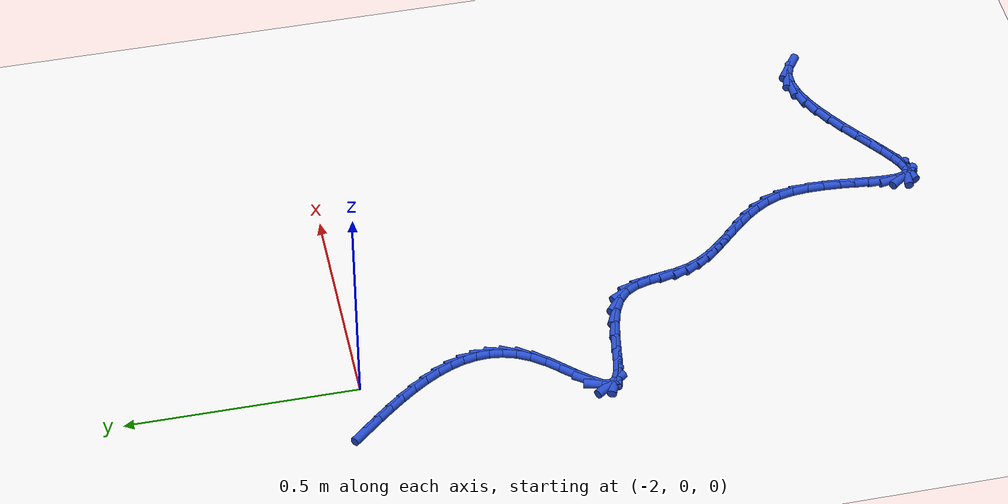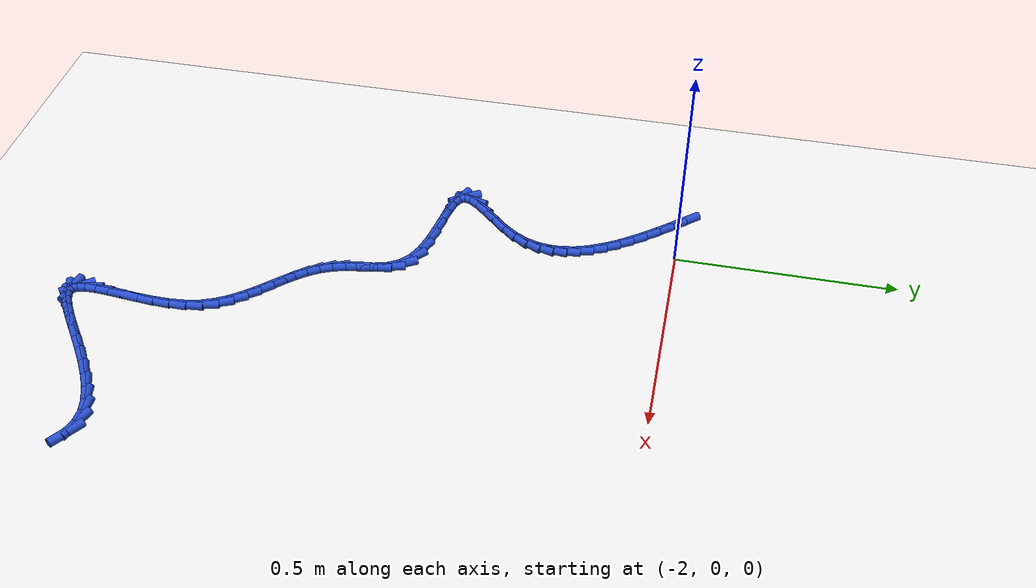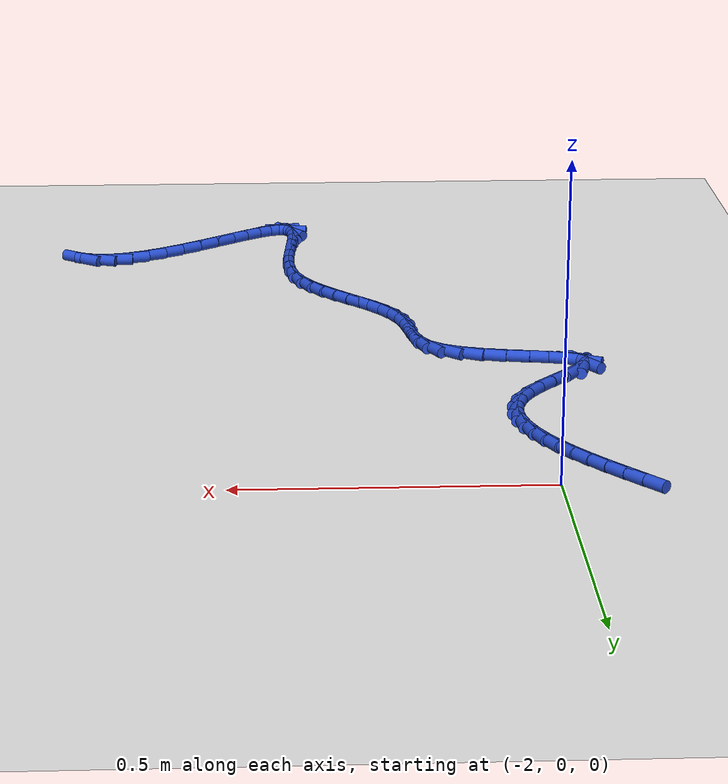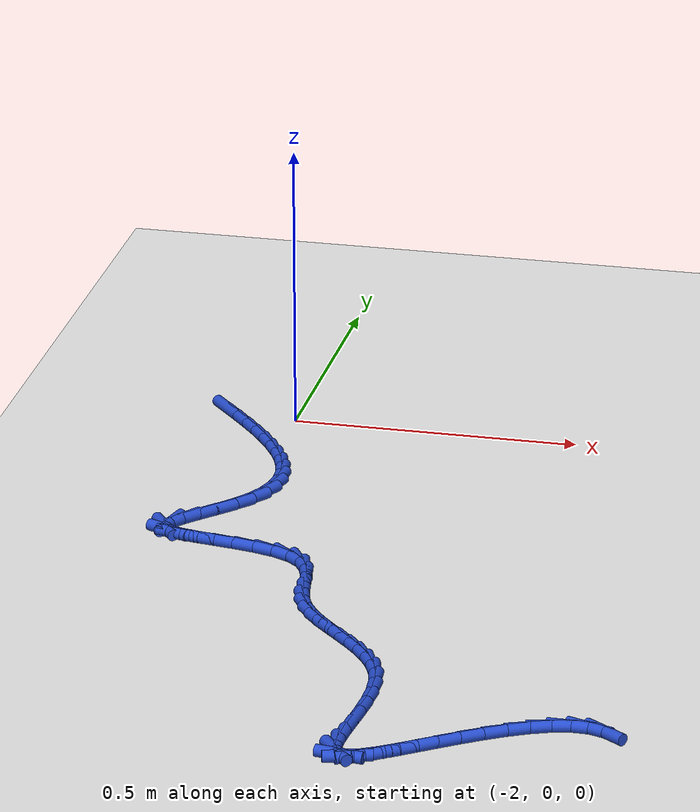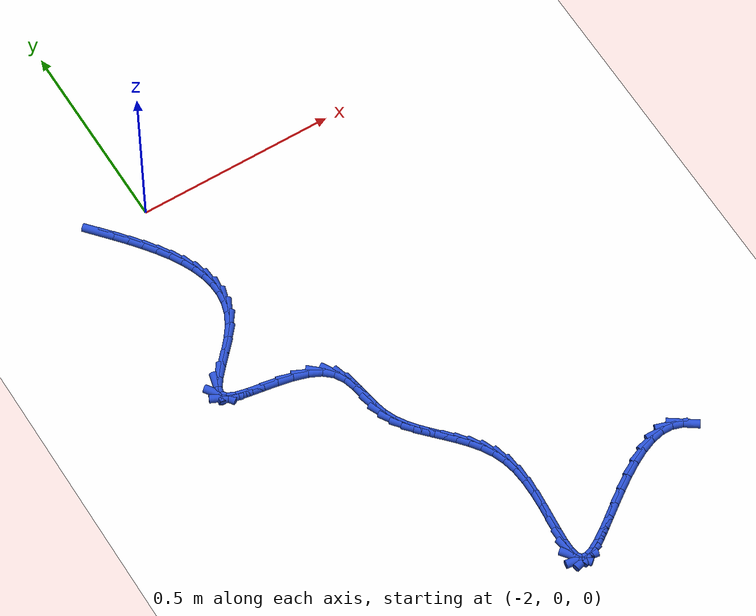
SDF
<sdf version="1.6">
 <world name="default">
  <model name="ground_plane">
   <static>1</static>
   <link name="link">
    <collision name="collision">
     <geometry><plane><normal>0 0 1</normal><size>100 100</size></plane></geometry>
     <surface><friction><ode><mu>100</mu><mu2>50</mu2></ode></friction></surface>
    </collision>
    <visual name="visual">
     <cast_shadows>0</cast_shadows>
     <geometry><plane><normal>0 0 1</normal><size>100 100</size></plane></geometry>
     <material>
      <script><uri>file://media/materials/scripts/gazebo.material</uri><name>Gazebo/WhiteGlow</name></script>
     </material>
    </visual>
   </link>
  </model>
  <model name="line">
   <link name="link_136">
    <pose>-2.1241853174846024 0.008256084330347219 0.01 0 1.57 -0.8607361774679425</pose>
    <collision name="collision">
     <geometry><cylinder><radius>0.01</radius><length>0.08</length></cylinder></geometry>
    </collision>
    <visual name="visual">
     <material>
      <script><name>Gazebo/Blue</name><uri>file://media/materials/scripts/gazebo.material</uri></script>
     </material>
     <geometry><cylinder><radius>0.01</radius><length>0.08</length></cylinder></geometry>
    </visual>
   </link>
   <link name="link_137">
    <pose>-2.099587744469628 -0.020357947055993905 0.01 0 1.57 -0.8769652375034089</pose>
    <collision name="collision">
     <geometry><cylinder><radius>0.01</radius><length>0.08</length></cylinder></geometry>
    </collision>
    <visual name="visual">
     <material>
      <script><name>Gazebo/Blue</name><uri>file://media/materials/scripts/gazebo.material</uri></script>
     </material>
     <geometry><cylinder><radius>0.01</radius><length>0.08</length></cylinder></geometry>
    </visual>
   </link>
   <link name="link_138">
    <pose>-2.075638941632601 -0.04914957978594491 0.01 0 1.57 -0.9031455912797525</pose>
    <collision name="collision">
     <geometry><cylinder><radius>0.01</radius><length>0.08</length></cylinder></geometry>
    </collision>
    <visual name="visual">
     <material>
      <script><name>Gazebo/Blue</name><uri>file://media/materials/scripts/gazebo.material</uri></script>
     </material>
     <geometry><cylinder><radius>0.01</radius><length>0.08</length></cylinder></geometry>
    </visual>
   </link>
   <link name="link_139">
    <pose>-2.0528190358458427 -0.07809278349974609 0.01 0 1.57 -0.9404273449143901</pose>
    <collision name="collision">
     <geometry><cylinder><radius>0.01</radius><length>0.08</length></cylinder></geometry>
    </collision>
    <visual name="visual">
     <material>
      <script><name>Gazebo/Blue</name><uri>file://media/materials/scripts/gazebo.material</uri></script>
     </material>
     <geometry><cylinder><radius>0.01</radius><length>0.08</length></cylinder></geometry>
    </visual>
   </link>
   <link name="link_140">
    <pose>-2.0316081539816726 -0.10716152783764023 0.01 0 1.57 -0.99051786147918</pose>
    <collision name="collision">
     <geometry><cylinder><radius>0.01</radius><length>0.08</length></cylinder></geometry>
    </collision>
    <visual name="visual">
     <material>
      <script><name>Gazebo/Blue</name><uri>file://media/materials/scripts/gazebo.material</uri></script>
     </material>
     <geometry><cylinder><radius>0.01</radius><length>0.08</length></cylinder></geometry>
    </visual>
   </link>
   <link name="link_141">
    <pose>-2.0124864229124104 -0.13632978243987026 0.01 0 1.57 -1.0557098295075826</pose>
    <collision name="collision">
     <geometry><cylinder><radius>0.01</radius><length>0.08</length></cylinder></geometry>
    </collision>
    <visual name="visual">
     <material>
      <script><name>Gazebo/Blue</name><uri>file://media/materials/scripts/gazebo.material</uri></script>
     </material>
     <geometry><cylinder><radius>0.01</radius><length>0.08</length></cylinder></geometry>
    </visual>
   </link>
   <link name="link_142">
    <pose>-1.995933969510377 -0.16557151694667638 0.01 0 1.57 -1.1388118481738803</pose>
    <collision name="collision">
     <geometry><cylinder><radius>0.01</radius><length>0.08</length></cylinder></geometry>
    </collision>
    <visual name="visual">
     <material>
      <script><name>Gazebo/Blue</name><uri>file://media/materials/scripts/gazebo.material</uri></script>
     </material>
     <geometry><cylinder><radius>0.01</radius><length>0.08</length></cylinder></geometry>
    </visual>
   </link>
   <link name="link_143">
    <pose>-1.982430920647892 -0.19486070099830227 0.01 0 1.57 -1.242815863957498</pose>
    <collision name="collision">
     <geometry><cylinder><radius>0.01</radius><length>0.08</length></cylinder></geometry>
    </collision>
    <visual name="visual">
     <material>
      <script><name>Gazebo/Blue</name><uri>file://media/materials/scripts/gazebo.material</uri></script>
     </material>
     <geometry><cylinder><radius>0.01</radius><length>0.08</length></cylinder></geometry>
    </visual>
   </link>
   <link name="link_144">
    <pose>-1.9724574031972768 -0.22417130423498827 0.01 0 1.57 -1.3700347168763618</pose>
    <collision name="collision">
     <geometry><cylinder><radius>0.01</radius><length>0.08</length></cylinder></geometry>
    </collision>
    <visual name="visual">
     <material>
      <script><name>Gazebo/Blue</name><uri>file://media/materials/scripts/gazebo.material</uri></script>
     </material>
     <geometry><cylinder><radius>0.01</radius><length>0.08</length></cylinder></geometry>
    </visual>
   </link>
   <link name="link_145">
    <pose>-1.9664935440308495 -0.253477296296978 0.01 0 1.57 -1.520486761899401</pose>
    <collision name="collision">
     <geometry><cylinder><radius>0.01</radius><length>0.08</length></cylinder></geometry>
    </collision>
    <visual name="visual">
     <material>
      <script><name>Gazebo/Blue</name><uri>file://media/materials/scripts/gazebo.material</uri></script>
     </material>
     <geometry><cylinder><radius>0.01</radius><length>0.08</length></cylinder></geometry>
    </visual>
   </link>
   <link name="link_146">
    <pose>-1.9650194700209314 -0.2827526468245118 0.01 0 1.57 1.451718414804494</pose>
    <collision name="collision">
     <geometry><cylinder><radius>0.01</radius><length>0.08</length></cylinder></geometry>
    </collision>
    <visual name="visual">
     <material>
      <script><name>Gazebo/Blue</name><uri>file://media/materials/scripts/gazebo.material</uri></script>
     </material>
     <geometry><cylinder><radius>0.01</radius><length>0.08</length></cylinder></geometry>
    </visual>
   </link>
   <link name="link_147">
    <pose>-1.9685153080398425 -0.31197132545783324 0.01 0 1.57 1.2728944397398632</pose>
    <collision name="collision">
     <geometry><cylinder><radius>0.01</radius><length>0.08</length></cylinder></geometry>
    </collision>
    <visual name="visual">
     <material>
      <script><name>Gazebo/Blue</name><uri>file://media/materials/scripts/gazebo.material</uri></script>
     </material>
     <geometry><cylinder><radius>0.01</radius><length>0.08</length></cylinder></geometry>
    </visual>
   </link>
   <link name="link_148">
    <pose>-1.9774611849599029 -0.3411073018371828 0.01 0 1.57 1.0972102495821443</pose>
    <collision name="collision">
     <geometry><cylinder><radius>0.01</radius><length>0.08</length></cylinder></geometry>
    </collision>
    <visual name="visual">
     <material>
      <script><name>Gazebo/Blue</name><uri>file://media/materials/scripts/gazebo.material</uri></script>
     </material>
     <geometry><cylinder><radius>0.01</radius><length>0.08</length></cylinder></geometry>
    </visual>
   </link>
   <link name="link_149">
    <pose>-1.9923372276534335 -0.37013454560280407 0.01 0 1.57 0.9420355888676528</pose>
    <collision name="collision">
     <geometry><cylinder><radius>0.01</radius><length>0.08</length></cylinder></geometry>
    </collision>
    <visual name="visual">
     <material>
      <script><name>Gazebo/Blue</name><uri>file://media/materials/scripts/gazebo.material</uri></script>
     </material>
     <geometry><cylinder><radius>0.01</radius><length>0.08</length></cylinder></geometry>
    </visual>
   </link>
   <link name="link_150">
    <pose>-2.0133035834759885 -0.3989654394112665 0.01 0 1.57 0.8488577502482019</pose>
    <collision name="collision">
     <geometry><cylinder><radius>0.01</radius><length>0.08</length></cylinder></geometry>
    </collision>
    <visual name="visual">
     <material>
      <script><name>Gazebo/Blue</name><uri>file://media/materials/scripts/gazebo.material</uri></script>
     </material>
     <geometry><cylinder><radius>0.01</radius><length>0.08</length></cylinder></geometry>
    </visual>
   </link>
   <link name="link_151">
    <pose>-2.038014589541808 -0.4270300685021886 0.01 0 1.57 0.8159530457453256</pose>
    <collision name="collision">
     <geometry><cylinder><radius>0.01</radius><length>0.08</length></cylinder></geometry>
    </collision>
    <visual name="visual">
     <material>
      <script><name>Gazebo/Blue</name><uri>file://media/materials/scripts/gazebo.material</uri></script>
     </material>
     <geometry><cylinder><radius>0.01</radius><length>0.08</length></cylinder></geometry>
    </visual>
   </link>
   <link name="link_152">
    <pose>-2.0629438392142037 -0.45353125842418385 0.01 0 1.57 0.840531120354488</pose>
    <collision name="collision">
     <geometry><cylinder><radius>0.01</radius><length>0.08</length></cylinder></geometry>
    </collision>
    <visual name="visual">
     <material>
      <script><name>Gazebo/Blue</name><uri>file://media/materials/scripts/gazebo.material</uri></script>
     </material>
     <geometry><cylinder><radius>0.01</radius><length>0.08</length></cylinder></geometry>
    </visual>
   </link>
   <link name="link_153">
    <pose>-2.0845580035074542 -0.47767050236996456 0.01 0 1.57 0.9574966306443287</pose>
    <collision name="collision">
     <geometry><cylinder><radius>0.01</radius><length>0.08</length></cylinder></geometry>
    </collision>
    <visual name="visual">
     <material>
      <script><name>Gazebo/Blue</name><uri>file://media/materials/scripts/gazebo.material</uri></script>
     </material>
     <geometry><cylinder><radius>0.01</radius><length>0.08</length></cylinder></geometry>
    </visual>
   </link>
   <link name="link_154">
    <pose>-2.0993237534358387 -0.4986492935322454 0.01 0 1.57 1.3186942539630504</pose>
    <collision name="collision">
     <geometry><cylinder><radius>0.01</radius><length>0.08</length></cylinder></geometry>
    </collision>
    <visual name="visual">
     <material>
      <script><name>Gazebo/Blue</name><uri>file://media/materials/scripts/gazebo.material</uri></script>
     </material>
     <geometry><cylinder><radius>0.01</radius><length>0.08</length></cylinder></geometry>
    </visual>
   </link>
   <link name="link_155">
    <pose>-2.1037077600136347 -0.5156691251037389 0.01 0 1.57 -0.9749293887276882</pose>
    <collision name="collision">
     <geometry><cylinder><radius>0.01</radius><length>0.08</length></cylinder></geometry>
    </collision>
    <visual name="visual">
     <material>
      <script><name>Gazebo/Blue</name><uri>file://media/materials/scripts/gazebo.material</uri></script>
     </material>
     <geometry><cylinder><radius>0.01</radius><length>0.08</length></cylinder></geometry>
    </visual>
   </link>
   <link name="link_156">
    <pose>-2.0951701759245176 -0.5282598281232559 0.01 0 1.57 -0.4289145983045296</pose>
    <collision name="collision">
     <geometry><cylinder><radius>0.01</radius><length>0.08</length></cylinder></geometry>
    </collision>
    <visual name="visual">
     <material>
      <script><name>Gazebo/Blue</name><uri>file://media/materials/scripts/gazebo.material</uri></script>
     </material>
     <geometry><cylinder><radius>0.01</radius><length>0.08</length></cylinder></geometry>
    </visual>
   </link>
   <link name="link_157">
    <pose>-2.075339138659145 -0.5373287196932574 0.01 0 1.57 -0.23550298773128087</pose>
    <collision name="collision">
     <geometry><cylinder><radius>0.01</radius><length>0.08</length></cylinder></geometry>
    </collision>
    <visual name="visual">
     <material>
      <script><name>Gazebo/Blue</name><uri>file://media/materials/scripts/gazebo.material</uri></script>
     </material>
     <geometry><cylinder><radius>0.01</radius><length>0.08</length></cylinder></geometry>
    </visual>
   </link>
   <link name="link_158">
    <pose>-2.046935642287342 -0.5441442973852062 0.01 0 1.57 -0.1686006774829085</pose>
    <collision name="collision">
     <geometry><cylinder><radius>0.01</radius><length>0.08</length></cylinder></geometry>
    </collision>
    <visual name="visual">
     <material>
      <script><name>Gazebo/Blue</name><uri>file://media/materials/scripts/gazebo.material</uri></script>
     </material>
     <geometry><cylinder><radius>0.01</radius><length>0.08</length></cylinder></geometry>
    </visual>
   </link>
   <link name="link_159">
    <pose>-2.0126806850613526 -0.5499750601528203 0.01 0 1.57 -0.16211632006032978</pose>
    <collision name="collision">
     <geometry><cylinder><radius>0.01</radius><length>0.08</length></cylinder></geometry>
    </collision>
    <visual name="visual">
     <material>
      <script><name>Gazebo/Blue</name><uri>file://media/materials/scripts/gazebo.material</uri></script>
     </material>
     <geometry><cylinder><radius>0.01</radius><length>0.08</length></cylinder></geometry>
    </visual>
   </link>
   <link name="link_160">
    <pose>-1.9752952652334195 -0.5560895069498182 0.01 0 1.57 -0.2001328488171359</pose>
    <collision name="collision">
     <geometry><cylinder><radius>0.01</radius><length>0.08</length></cylinder></geometry>
    </collision>
    <visual name="visual">
     <material>
      <script><name>Gazebo/Blue</name><uri>file://media/materials/scripts/gazebo.material</uri></script>
     </material>
     <geometry><cylinder><radius>0.01</radius><length>0.08</length></cylinder></geometry>
    </visual>
   </link>
   <link name="link_161">
    <pose>-1.937500381055785 -0.5637561367299182 0.01 0 1.57 -0.2873746212448334</pose>
    <collision name="collision">
     <geometry><cylinder><radius>0.01</radius><length>0.08</length></cylinder></geometry>
    </collision>
    <visual name="visual">
     <material>
      <script><name>Gazebo/Blue</name><uri>file://media/materials/scripts/gazebo.material</uri></script>
     </material>
     <geometry><cylinder><radius>0.01</radius><length>0.08</length></cylinder></geometry>
    </visual>
   </link>
   <link name="link_162">
    <pose>-1.902017030780694 -0.5742434484468386 0.01 0 1.57 -0.44645448244465274</pose>
    <collision name="collision">
     <geometry><cylinder><radius>0.01</radius><length>0.08</length></cylinder></geometry>
    </collision>
    <visual name="visual">
     <material>
      <script><name>Gazebo/Blue</name><uri>file://media/materials/scripts/gazebo.material</uri></script>
     </material>
     <geometry><cylinder><radius>0.01</radius><length>0.08</length></cylinder></geometry>
    </visual>
   </link>
   <link name="link_163">
    <pose>-1.8715662126603883 -0.5888199410542981 0.01 0 1.57 -0.7196946822047133</pose>
    <collision name="collision">
     <geometry><cylinder><radius>0.01</radius><length>0.08</length></cylinder></geometry>
    </collision>
    <visual name="visual">
     <material>
      <script><name>Gazebo/Blue</name><uri>file://media/materials/scripts/gazebo.material</uri></script>
     </material>
     <geometry><cylinder><radius>0.01</radius><length>0.08</length></cylinder></geometry>
    </visual>
   </link>
   <link name="link_164">
    <pose>-1.8488414227174939 -0.6087388525869437 0.01 0 1.57 -1.0589328805668148</pose>
    <collision name="collision">
     <geometry><cylinder><radius>0.01</radius><length>0.08</length></cylinder></geometry>
    </collision>
    <visual name="visual">
     <material>
      <script><name>Gazebo/Blue</name><uri>file://media/materials/scripts/gazebo.material</uri></script>
     </material>
     <geometry><cylinder><radius>0.01</radius><length>0.08</length></cylinder></geometry>
    </visual>
   </link>
   <link name="link_165">
    <pose>-1.8345610604036895 -0.6341574448860713 0.01 0 1.57 -1.29183750167751</pose>
    <collision name="collision">
     <geometry><cylinder><radius>0.01</radius><length>0.08</length></cylinder></geometry>
    </collision>
    <visual name="visual">
     <material>
      <script><name>Gazebo/Blue</name><uri>file://media/materials/scripts/gazebo.material</uri></script>
     </material>
     <geometry><cylinder><radius>0.01</radius><length>0.08</length></cylinder></geometry>
    </visual>
   </link>
   <link name="link_166">
    <pose>-1.8261790280334127 -0.663421518420238 0.01 0 1.57 -1.4018710597784083</pose>
    <collision name="collision">
     <geometry><cylinder><radius>0.01</radius><length>0.08</length></cylinder></geometry>
    </collision>
    <visual name="visual">
     <material>
      <script><name>Gazebo/Blue</name><uri>file://media/materials/scripts/gazebo.material</uri></script>
     </material>
     <geometry><cylinder><radius>0.01</radius><length>0.08</length></cylinder></geometry>
    </visual>
   </link>
   <link name="link_167">
    <pose>-1.82084325431449 -0.6947070896618341 0.01 0 1.57 -1.4089127735226457</pose>
    <collision name="collision">
     <geometry><cylinder><radius>0.01</radius><length>0.08</length></cylinder></geometry>
    </collision>
    <visual name="visual">
     <material>
      <script><name>Gazebo/Blue</name><uri>file://media/materials/scripts/gazebo.material</uri></script>
     </material>
     <geometry><cylinder><radius>0.01</radius><length>0.08</length></cylinder></geometry>
    </visual>
   </link>
   <link name="link_168">
    <pose>-1.8157016679547486 -0.7261901750832467 0.01 0 1.57 -1.315742328848679</pose>
    <collision name="collision">
     <geometry><cylinder><radius>0.01</radius><length>0.08</length></cylinder></geometry>
    </collision>
    <visual name="visual">
     <material>
      <script><name>Gazebo/Blue</name><uri>file://media/materials/scripts/gazebo.material</uri></script>
     </material>
     <geometry><cylinder><radius>0.01</radius><length>0.08</length></cylinder></geometry>
    </visual>
   </link>
   <link name="link_169">
    <pose>-1.8079149228495186 -0.7560550630736539 0.01 0 1.57 -1.1548129138747654</pose>
    <collision name="collision">
     <geometry><cylinder><radius>0.01</radius><length>0.08</length></cylinder></geometry>
    </collision>
    <visual name="visual">
     <material>
      <script><name>Gazebo/Blue</name><uri>file://media/materials/scripts/gazebo.material</uri></script>
     </material>
     <geometry><cylinder><radius>0.01</radius><length>0.08</length></cylinder></geometry>
    </visual>
   </link>
   <link name="link_170">
    <pose>-1.7958828355289826 -0.7832915507977091 0.01 0 1.57 -1.0136051006716646</pose>
    <collision name="collision">
     <geometry><cylinder><radius>0.01</radius><length>0.08</length></cylinder></geometry>
    </collision>
    <visual name="visual">
     <material>
      <script><name>Gazebo/Blue</name><uri>file://media/materials/scripts/gazebo.material</uri></script>
     </material>
     <geometry><cylinder><radius>0.01</radius><length>0.08</length></cylinder></geometry>
    </visual>
   </link>
   <link name="link_171">
    <pose>-1.7802650736017644 -0.8083584353913055 0.01 0 1.57 -0.9093242878773161</pose>
    <collision name="collision">
     <geometry><cylinder><radius>0.01</radius><length>0.08</length></cylinder></geometry>
    </collision>
    <visual name="visual">
     <material>
      <script><name>Gazebo/Blue</name><uri>file://media/materials/scripts/gazebo.material</uri></script>
     </material>
     <geometry><cylinder><radius>0.01</radius><length>0.08</length></cylinder></geometry>
    </visual>
   </link>
   <link name="link_172">
    <pose>-1.761961570062916 -0.8318706967800428 0.01 0 1.57 -0.8435414990073047</pose>
    <collision name="collision">
     <geometry><cylinder><radius>0.01</radius><length>0.08</length></cylinder></geometry>
    </collision>
    <visual name="visual">
     <material>
      <script><name>Gazebo/Blue</name><uri>file://media/materials/scripts/gazebo.material</uri></script>
     </material>
     <geometry><cylinder><radius>0.01</radius><length>0.08</length></cylinder></geometry>
    </visual>
   </link>
   <link name="link_173">
    <pose>-1.7418722579074926 -0.8544433148895199 0.01 0 1.57 -0.8148360808402384</pose>
    <collision name="collision">
     <geometry><cylinder><radius>0.01</radius><length>0.08</length></cylinder></geometry>
    </collision>
    <visual name="visual">
     <material>
      <script><name>Gazebo/Blue</name><uri>file://media/materials/scripts/gazebo.material</uri></script>
     </material>
     <geometry><cylinder><radius>0.01</radius><length>0.08</length></cylinder></geometry>
    </visual>
   </link>
   <link name="link_174">
    <pose>-1.7208970701305444 -0.8766912696453371 0.01 0 1.57 -0.8216389008223832</pose>
    <collision name="collision">
     <geometry><cylinder><radius>0.01</radius><length>0.08</length></cylinder></geometry>
    </collision>
    <visual name="visual">
     <material>
      <script><name>Gazebo/Blue</name><uri>file://media/materials/scripts/gazebo.material</uri></script>
     </material>
     <geometry><cylinder><radius>0.01</radius><length>0.08</length></cylinder></geometry>
    </visual>
   </link>
   <link name="link_175">
    <pose>-1.6999359397271256 -0.8992295409730926 0.01 0 1.57 -0.863335458177522</pose>
    <collision name="collision">
     <geometry><cylinder><radius>0.01</radius><length>0.08</length></cylinder></geometry>
    </collision>
    <visual name="visual">
     <material>
      <script><name>Gazebo/Blue</name><uri>file://media/materials/scripts/gazebo.material</uri></script>
     </material>
     <geometry><cylinder><radius>0.01</radius><length>0.08</length></cylinder></geometry>
    </visual>
   </link>
   <link name="link_176">
    <pose>-1.679888799692289 -0.9226731087983876 0.01 0 1.57 -0.9399674762414553</pose>
    <collision name="collision">
     <geometry><cylinder><radius>0.01</radius><length>0.08</length></cylinder></geometry>
    </collision>
    <visual name="visual">
     <material>
      <script><name>Gazebo/Blue</name><uri>file://media/materials/scripts/gazebo.material</uri></script>
     </material>
     <geometry><cylinder><radius>0.01</radius><length>0.08</length></cylinder></geometry>
    </visual>
   </link>
   <link name="link_177">
    <pose>-1.661655583021088 -0.9476369530468198 0.01 0 1.57 -1.05070046222411</pose>
    <collision name="collision">
     <geometry><cylinder><radius>0.01</radius><length>0.08</length></cylinder></geometry>
    </collision>
    <visual name="visual">
     <material>
      <script><name>Gazebo/Blue</name><uri>file://media/materials/scripts/gazebo.material</uri></script>
     </material>
     <geometry><cylinder><radius>0.01</radius><length>0.08</length></cylinder></geometry>
    </visual>
   </link>
   <link name="link_178">
    <pose>-1.6461362227085745 -0.9747360536439909 0.01 0 1.57 -1.1912770122000576</pose>
    <collision name="collision">
     <geometry><cylinder><radius>0.01</radius><length>0.08</length></cylinder></geometry>
    </collision>
    <visual name="visual">
     <material>
      <script><name>Gazebo/Blue</name><uri>file://media/materials/scripts/gazebo.material</uri></script>
     </material>
     <geometry><cylinder><radius>0.01</radius><length>0.08</length></cylinder></geometry>
    </visual>
   </link>
   <link name="link_179">
    <pose>-1.6342306517498029 -1.0045853905154982 0.01 0 1.57 -1.3500986380280786</pose>
    <collision name="collision">
     <geometry><cylinder><radius>0.01</radius><length>0.08</length></cylinder></geometry>
    </collision>
    <visual name="visual">
     <material>
      <script><name>Gazebo/Blue</name><uri>file://media/materials/scripts/gazebo.material</uri></script>
     </material>
     <geometry><cylinder><radius>0.01</radius><length>0.08</length></cylinder></geometry>
    </visual>
   </link>
   <link name="link_180">
    <pose>-1.6267897383473868 -1.0377516188153155 0.01 0 1.57 -1.4845023686465435</pose>
    <collision name="collision">
     <geometry><cylinder><radius>0.01</radius><length>0.08</length></cylinder></geometry>
    </collision>
    <visual name="visual">
     <material>
      <script><name>Gazebo/Blue</name><uri>file://media/materials/scripts/gazebo.material</uri></script>
     </material>
     <geometry><cylinder><radius>0.01</radius><length>0.08</length></cylinder></geometry>
    </visual>
   </link>
   <link name="link_181">
    <pose>-1.623669382170305 -1.0738214317985442 0.01 0 1.57 1.5673406079146939</pose>
    <collision name="collision">
     <geometry><cylinder><radius>0.01</radius><length>0.08</length></cylinder></geometry>
    </collision>
    <visual name="visual">
     <material>
      <script><name>Gazebo/Blue</name><uri>file://media/materials/scripts/gazebo.material</uri></script>
     </material>
     <geometry><cylinder><radius>0.01</radius><length>0.08</length></cylinder></geometry>
    </visual>
   </link>
   <link name="link_182">
    <pose>-1.6237994837938237 -1.111469490028252 0.01 0 1.57 1.5107830044740125</pose>
    <collision name="collision">
     <geometry><cylinder><radius>0.01</radius><length>0.08</length></cylinder></geometry>
    </collision>
    <visual name="visual">
     <material>
      <script><name>Gazebo/Blue</name><uri>file://media/materials/scripts/gazebo.material</uri></script>
     </material>
     <geometry><cylinder><radius>0.01</radius><length>0.08</length></cylinder></geometry>
    </visual>
   </link>
   <link name="link_183">
    <pose>-1.6260746952079554 -1.1493357371198158 0.01 0 1.57 1.4807740166514165</pose>
    <collision name="collision">
     <geometry><cylinder><radius>0.01</radius><length>0.08</length></cylinder></geometry>
    </collision>
    <visual name="visual">
     <material>
      <script><name>Gazebo/Blue</name><uri>file://media/materials/scripts/gazebo.material</uri></script>
     </material>
     <geometry><cylinder><radius>0.01</radius><length>0.08</length></cylinder></geometry>
    </visual>
   </link>
   <link name="link_184">
    <pose>-1.629389668402714 -1.18606011668861 0.01 0 1.57 1.4761311531900103</pose>
    <collision name="collision">
     <geometry><cylinder><radius>0.01</radius><length>0.08</length></cylinder></geometry>
    </collision>
    <visual name="visual">
     <material>
      <script><name>Gazebo/Blue</name><uri>file://media/materials/scripts/gazebo.material</uri></script>
     </material>
     <geometry><cylinder><radius>0.01</radius><length>0.08</length></cylinder></geometry>
    </visual>
   </link>
   <link name="link_185">
    <pose>-1.6326390553681125 -1.2202825723500121 0.01 0 1.57 1.502443812462719</pose>
    <collision name="collision">
     <geometry><cylinder><radius>0.01</radius><length>0.08</length></cylinder></geometry>
    </collision>
    <visual name="visual">
     <material>
      <script><name>Gazebo/Blue</name><uri>file://media/materials/scripts/gazebo.material</uri></script>
     </material>
     <geometry><cylinder><radius>0.01</radius><length>0.08</length></cylinder></geometry>
    </visual>
   </link>
   <link name="link_186">
    <pose>-1.6347175080941636 -1.2506430477193953 0.01 0 1.57 -1.562926886614102</pose>
    <collision name="collision">
     <geometry><cylinder><radius>0.01</radius><length>0.08</length></cylinder></geometry>
    </collision>
    <visual name="visual">
     <material>
      <script><name>Gazebo/Blue</name><uri>file://media/materials/scripts/gazebo.material</uri></script>
     </material>
     <geometry><cylinder><radius>0.01</radius><length>0.08</length></cylinder></geometry>
    </visual>
   </link>
   <link name="link_187">
    <pose>-1.6345196785708809 -1.2757814864121382 0.01 0 1.57 -1.3802399981424256</pose>
    <collision name="collision">
     <geometry><cylinder><radius>0.01</radius><length>0.08</length></cylinder></geometry>
    </collision>
    <visual name="visual">
     <material>
      <script><name>Gazebo/Blue</name><uri>file://media/materials/scripts/gazebo.material</uri></script>
     </material>
     <geometry><cylinder><radius>0.01</radius><length>0.08</length></cylinder></geometry>
    </visual>
   </link>
   <link name="link_188">
    <pose>-1.6309402187882787 -1.294337832043615 0.01 0 1.57 -0.9211246651200304</pose>
    <collision name="collision">
     <geometry><cylinder><radius>0.01</radius><length>0.08</length></cylinder></geometry>
    </collision>
    <visual name="visual">
     <material>
      <script><name>Gazebo/Blue</name><uri>file://media/materials/scripts/gazebo.material</uri></script>
     </material>
     <geometry><cylinder><radius>0.01</radius><length>0.08</length></cylinder></geometry>
    </visual>
   </link>
   <link name="link_189">
    <pose>-1.6228751390720346 -1.304954159114038 0.01 0 1.57 -0.15233405198034783</pose>
    <collision name="collision">
     <geometry><cylinder><radius>0.01</radius><length>0.08</length></cylinder></geometry>
    </collision>
    <visual name="visual">
     <material>
      <script><name>Gazebo/Blue</name><uri>file://media/materials/scripts/gazebo.material</uri></script>
     </material>
     <geometry><cylinder><radius>0.01</radius><length>0.08</length></cylinder></geometry>
    </visual>
   </link>
   <link name="link_190">
    <pose>-1.6096721394387592 -1.3069811289160451 0.01 0 1.57 0.2972872988968865</pose>
    <collision name="collision">
     <geometry><cylinder><radius>0.01</radius><length>0.08</length></cylinder></geometry>
    </collision>
    <visual name="visual">
     <material>
      <script><name>Gazebo/Blue</name><uri>file://media/materials/scripts/gazebo.material</uri></script>
     </material>
     <geometry><cylinder><radius>0.01</radius><length>0.08</length></cylinder></geometry>
    </visual>
   </link>
   <link name="link_191">
    <pose>-1.5917822646336413 -1.3015002713404922 0.01 0 1.57 0.4876715498171014</pose>
    <collision name="collision">
     <geometry><cylinder><radius>0.01</radius><length>0.08</length></cylinder></geometry>
    </collision>
    <visual name="visual">
     <material>
      <script><name>Gazebo/Blue</name><uri>file://media/materials/scripts/gazebo.material</uri></script>
     </material>
     <geometry><cylinder><radius>0.01</radius><length>0.08</length></cylinder></geometry>
    </visual>
   </link>
   <link name="link_192">
    <pose>-1.5698218800132984 -1.28985246247126 0.01 0 1.57 0.5751139643004439</pose>
    <collision name="collision">
     <geometry><cylinder><radius>0.01</radius><length>0.08</length></cylinder></geometry>
    </collision>
    <visual name="visual">
     <material>
      <script><name>Gazebo/Blue</name><uri>file://media/materials/scripts/gazebo.material</uri></script>
     </material>
     <geometry><cylinder><radius>0.01</radius><length>0.08</length></cylinder></geometry>
    </visual>
   </link>
   <link name="link_193">
    <pose>-1.5444073509343441 -1.273378578392228 0.01 0 1.57 0.6150473878442183</pose>
    <collision name="collision">
     <geometry><cylinder><radius>0.01</radius><length>0.08</length></cylinder></geometry>
    </collision>
    <visual name="visual">
     <material>
      <script><name>Gazebo/Blue</name><uri>file://media/materials/scripts/gazebo.material</uri></script>
     </material>
     <geometry><cylinder><radius>0.01</radius><length>0.08</length></cylinder></geometry>
    </visual>
   </link>
   <link name="link_194">
    <pose>-1.5161550427533916 -1.253419495187275 0.01 0 1.57 0.6275223456193553</pose>
    <collision name="collision">
     <geometry><cylinder><radius>0.01</radius><length>0.08</length></cylinder></geometry>
    </collision>
    <visual name="visual">
     <material>
      <script><name>Gazebo/Blue</name><uri>file://media/materials/scripts/gazebo.material</uri></script>
     </material>
     <geometry><cylinder><radius>0.01</radius><length>0.08</length></cylinder></geometry>
    </visual>
   </link>
   <link name="link_195">
    <pose>-1.4856813208270576 -1.2313160889402828 0.01 0 1.57 0.6201141834772619</pose>
    <collision name="collision">
     <geometry><cylinder><radius>0.01</radius><length>0.08</length></cylinder></geometry>
    </collision>
    <visual name="visual">
     <material>
      <script><name>Gazebo/Blue</name><uri>file://media/materials/scripts/gazebo.material</uri></script>
     </material>
     <geometry><cylinder><radius>0.01</radius><length>0.08</length></cylinder></geometry>
    </visual>
   </link>
   <link name="link_196">
    <pose>-1.4536025505119554 -1.2084092357351295 0.01 0 1.57 0.594764744283351</pose>
    <collision name="collision">
     <geometry><cylinder><radius>0.01</radius><length>0.08</length></cylinder></geometry>
    </collision>
    <visual name="visual">
     <material>
      <script><name>Gazebo/Blue</name><uri>file://media/materials/scripts/gazebo.material</uri></script>
     </material>
     <geometry><cylinder><radius>0.01</radius><length>0.08</length></cylinder></geometry>
    </visual>
   </link>
   <link name="link_197">
    <pose>-1.4205350971647015 -1.1860398116556963 0.01 0 1.57 0.5497613399280211</pose>
    <collision name="collision">
     <geometry><cylinder><radius>0.01</radius><length>0.08</length></cylinder></geometry>
    </collision>
    <visual name="visual">
     <material>
      <script><name>Gazebo/Blue</name><uri>file://media/materials/scripts/gazebo.material</uri></script>
     </material>
     <geometry><cylinder><radius>0.01</radius><length>0.08</length></cylinder></geometry>
    </visual>
   </link>
   <link name="link_198">
    <pose>-1.3870953261419086 -1.1655486927858618 0.01 0 1.57 0.47976021493481436</pose>
    <collision name="collision">
     <geometry><cylinder><radius>0.01</radius><length>0.08</length></cylinder></geometry>
    </collision>
    <visual name="visual">
     <material>
      <script><name>Gazebo/Blue</name><uri>file://media/materials/scripts/gazebo.material</uri></script>
     </material>
     <geometry><cylinder><radius>0.01</radius><length>0.08</length></cylinder></geometry>
    </visual>
   </link>
   <link name="link_199">
    <pose>-1.3538996028001937 -1.1482767552095072 0.01 0 1.57 0.3745672820015515</pose>
    <collision name="collision">
     <geometry><cylinder><radius>0.01</radius><length>0.08</length></cylinder></geometry>
    </collision>
    <visual name="visual">
     <material>
      <script><name>Gazebo/Blue</name><uri>file://media/materials/scripts/gazebo.material</uri></script>
     </material>
     <geometry><cylinder><radius>0.01</radius><length>0.08</length></cylinder></geometry>
    </visual>
   </link>
   <link name="link_200">
    <pose>-1.3215642924961681 -1.135564875010511 0.01 0 1.57 0.21723237547056456</pose>
    <collision name="collision">
     <geometry><cylinder><radius>0.01</radius><length>0.08</length></cylinder></geometry>
    </collision>
    <visual name="visual">
     <material>
      <script><name>Gazebo/Blue</name><uri>file://media/materials/scripts/gazebo.material</uri></script>
     </material>
     <geometry><cylinder><radius>0.01</radius><length>0.08</length></cylinder></geometry>
    </visual>
   </link>
   <link name="link_201">
    <pose>-1.2907057605864503 -1.1287539282727541 0.01 0 1.57 -0.014977395302736068</pose>
    <collision name="collision">
     <geometry><cylinder><radius>0.01</radius><length>0.08</length></cylinder></geometry>
    </collision>
    <visual name="visual">
     <material>
      <script><name>Gazebo/Blue</name><uri>file://media/materials/scripts/gazebo.material</uri></script>
     </material>
     <geometry><cylinder><radius>0.01</radius><length>0.08</length></cylinder></geometry>
    </visual>
   </link>
   <link name="link_202">
    <pose>-1.261940372427652 -1.1291847910801156 0.01 0 1.57 -0.32687194700967853</pose>
    <collision name="collision">
     <geometry><cylinder><radius>0.01</radius><length>0.08</length></cylinder></geometry>
    </collision>
    <visual name="visual">
     <material>
      <script><name>Gazebo/Blue</name><uri>file://media/materials/scripts/gazebo.material</uri></script>
     </material>
     <geometry><cylinder><radius>0.01</radius><length>0.08</length></cylinder></geometry>
    </visual>
   </link>
   <link name="link_203">
    <pose>-1.2358265669502833 -1.1380382472661648 0.01 0 1.57 -0.6106657437589399</pose>
    <collision name="collision">
     <geometry><cylinder><radius>0.01</radius><length>0.08</length></cylinder></geometry>
    </collision>
    <visual name="visual">
     <material>
      <script><name>Gazebo/Blue</name><uri>file://media/materials/scripts/gazebo.material</uri></script>
     </material>
     <geometry><cylinder><radius>0.01</radius><length>0.08</length></cylinder></geometry>
    </visual>
   </link>
  </model>
 </world>
</sdf>
